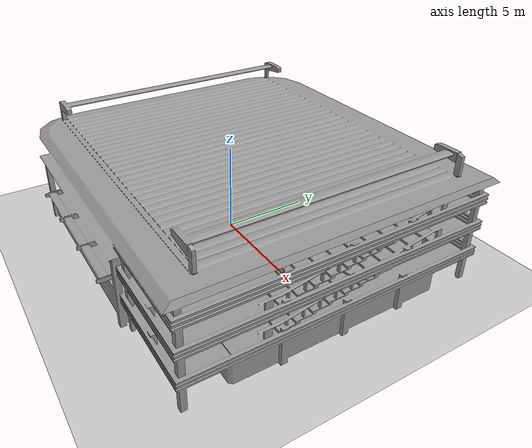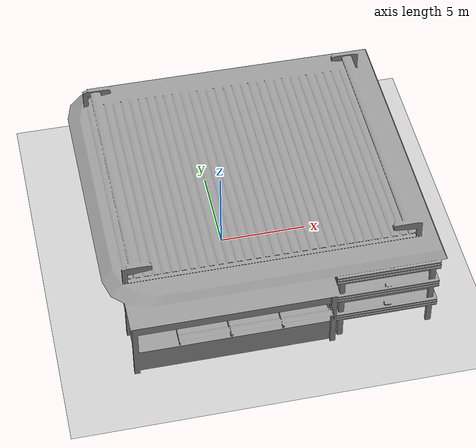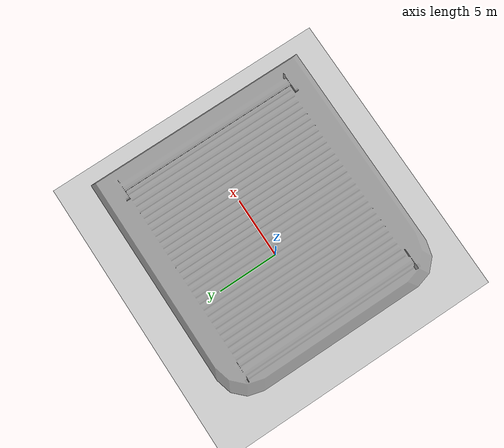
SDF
<?xml version="1.0" ?>
<sdf version="1.5">
    <world name="tower">

        <gui fullscreen='false'>
        <camera name='user_camera'>
            <pose>0.5 21 11 0 0.5 -1.6</pose>  <!-- x y z roll pitch yaw -->
            <view_controller>orbit</view_controller>
        </camera>
        </gui>

        <physics type="ode">
        <max_step_size>0.001</max_step_size>
        <real_time_factor>1</real_time_factor>
        <real_time_update_rate>1000</real_time_update_rate>
        <gravity>0 0 -9.81</gravity>
            <ode>
                <solver>
                <type>quick</type>
                <iters>50</iters>
                <sor>1.3</sor>
                </solver>
                <constraints>
                <cfm>0.0</cfm>
                <erp>0.2</erp>
                <contact_max_correcting_vel>10.0</contact_max_correcting_vel>
                <contact_surface_layer>0.001</contact_surface_layer>
                </constraints>
            </ode>
        </physics>

        <scene>
        <sky>
            <clouds>
                <speed>12</speed>
            </clouds>
        </sky>
        </scene>
        <!-- A global light source -->
        <include>
            <uri>model://sun</uri>
        </include>
        <!-- A ground plane -->
        <include>
            <uri>model://ground_plane</uri>
        </include>
        <!-- environment blocks, obstacles or stairs -->
        <include>
            <uri>model://Building</uri>
            <pose>0 0 0 0 0 0</pose>   <!-- 模型位姿（x,y,z,r,p,y），默认放在原点 -->
        </include>

        <plugin name="gazebo_ros_state" filename="libgazebo_ros_state.so">
            <ros>
                <namespace>/gazebo</namespace>
            </ros>
            <update_rate>100</update_rate>
        </plugin>

    </world>
</sdf>

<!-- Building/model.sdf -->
<sdf version='1.7'>
  <model name='Buliding'>
    <link name='link_0'>
      <inertial>
        <mass>1000</mass>
        <inertia>
          <ixx>0.166667</ixx>
          <ixy>0</ixy>
          <ixz>0</ixz>
          <iyy>0.166667</iyy>
          <iyz>0</iyz>
          <izz>0.166667</izz>
        </inertia>
      </inertial>
      <pose>-2e-06 -1e-06 -0.1 0 -0 0</pose>
      <visual name='visual'>
        <pose>0 0 0 0 -0 0</pose>
        <geometry>
          <mesh>
            <uri>model://Building/Building_fast.dae</uri>
            <scale>1 1 1</scale>
          </mesh>
        </geometry>
        <material>
          <lighting>1</lighting>
          <script>
            <uri>file://media/materials/scripts/gazebo.material</uri>
            <name>Gazebo/Grey</name>
          </script>
          <shader type='pixel'/>
        </material>
        <transparency>0</transparency>
        <cast_shadows>1</cast_shadows>
      </visual>
      <collision name='collision'>
        <laser_retro>0</laser_retro>
        <max_contacts>10</max_contacts>
        <pose>0 0 0 0 -0 0</pose>
        <geometry>
          <mesh>
            <uri>model://Building/Building_collision.stl</uri>
            <scale>1 1 1</scale>
          </mesh>
        </geometry>
        <surface>
          <friction>
            <ode>
            <!-- 增加大一点摩擦力 -->
              <mu>0.5</mu>
              <mu2>0.5</mu2>
              <fdir1>0 0 0</fdir1>
              <slip1>0</slip1>
              <slip2>0</slip2>
            </ode>
            <torsional>
              <coefficient>1</coefficient>
              <patch_radius>0</patch_radius>
              <surface_radius>0</surface_radius>
              <use_patch_radius>1</use_patch_radius>
              <ode>
                <slip>0</slip>
              </ode>
            </torsional>
          </friction>
          <bounce>
            <restitution_coefficient>0</restitution_coefficient>
            <threshold>1e+06</threshold>
          </bounce>
          <contact>
            <collide_without_contact>0</collide_without_contact>
            <collide_without_contact_bitmask>1</collide_without_contact_bitmask>
            <collide_bitmask>1</collide_bitmask>
            <ode>
              <soft_cfm>0</soft_cfm>
              <soft_erp>0.2</soft_erp>
              <kp>1e+13</kp>
              <kd>1</kd>
              <max_vel>0.01</max_vel>
              <min_depth>0</min_depth>
            </ode>
            <bullet>
              <split_impulse>1</split_impulse>
              <split_impulse_penetration_threshold>-0.01</split_impulse_penetration_threshold>
              <soft_cfm>0</soft_cfm>
              <soft_erp>0.2</soft_erp>
              <kp>1e+13</kp>
              <kd>1</kd>
            </bullet>
          </contact>
        </surface>
      </collision>
    </link>
    <static>true</static>
    <allow_auto_disable>1</allow_auto_disable>
  </model>
</sdf>
